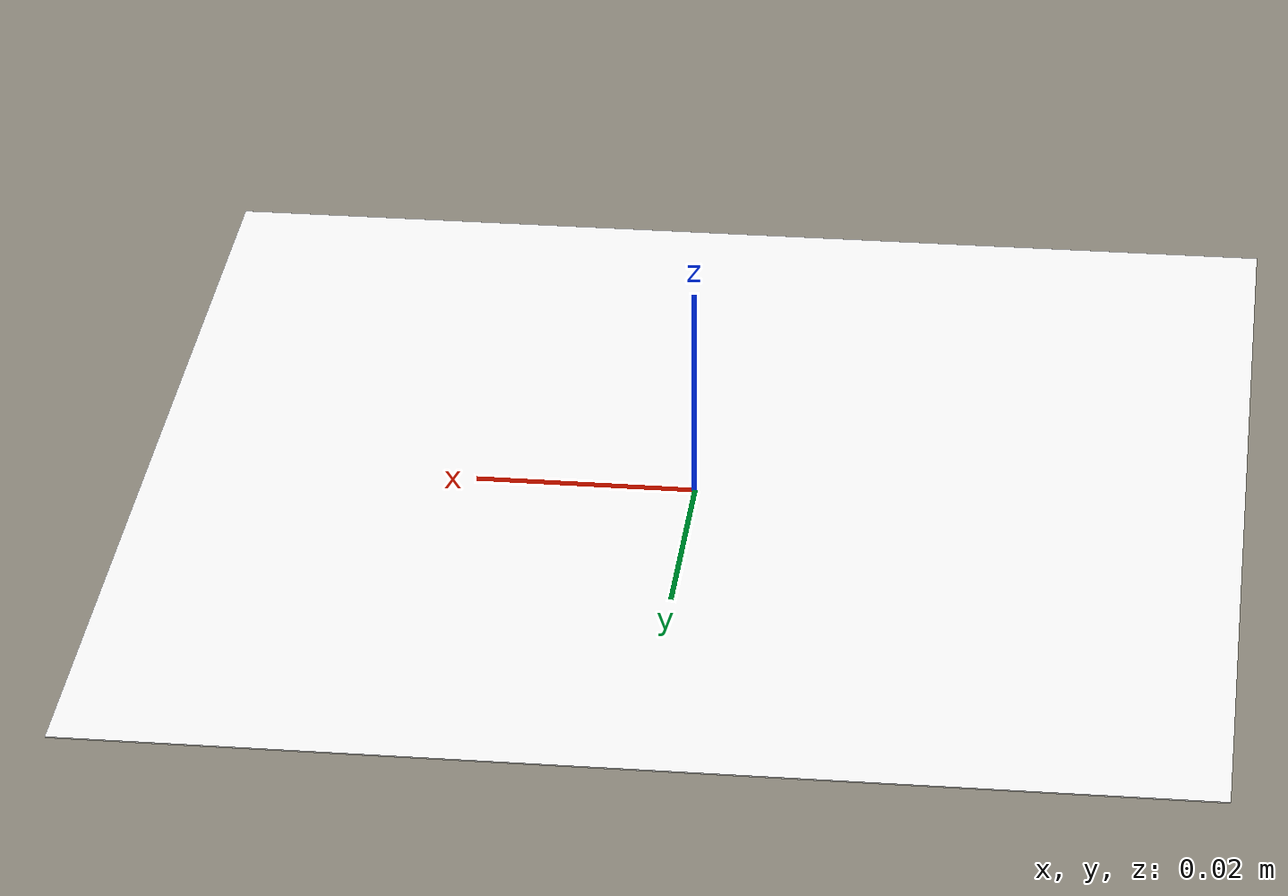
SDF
<?xml version="1.0" encoding="UTF-8"?>
<sdf version='1.9'>
  <model name='arucotag_0_small'>
    <static>true</static>
    <pose>0 0 0.001 0 0 0</pose>
    <link name='base_0'>
      <visual name='base_visual'>
        <geometry>
          <plane>
            <normal>0 0 1</normal>
            <size>0.1 0.1</size>
          </plane>
        </geometry>
        <material>
          <diffuse>1 1 1 1</diffuse>
          <specular>0.4 0.4 0.4 1</specular>
          <pbr>
            <metal>
              <albedo_map>model://arucotag_0/4x4_1000-0.png</albedo_map>
            </metal>
          </pbr>
        </material>
      </visual>

      <!-- GPS tracking tag for px4 groundtruth -->
      <sensor name="navsat_sensor" type="navsat">
        <gz_frame_id>base_0</gz_frame_id>
        <always_on>1</always_on>
        <update_rate>30</update_rate>

        <navsat>
          <position_sensing>
          <horizontal>
            <noise type="gaussian">
              <stddev>0</stddev>
            </noise>
          </horizontal>
        </position_sensing>
        </navsat>

        <topic>/tag/itag/gz_groundtruth_gps</topic>
      </sensor>

    </link>

  </model>
</sdf>
